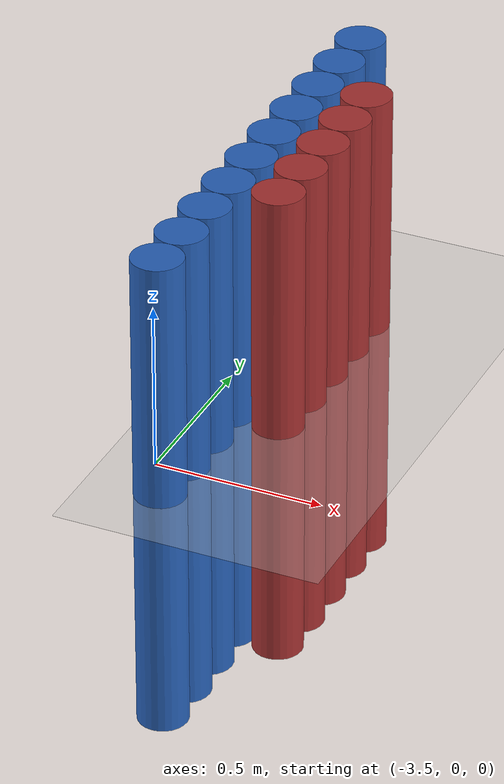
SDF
<sdf version="1.6">
 <world name="default">
  <model name="ground_plane">
   <static>1</static>
   <link name="link">
    <collision name="collision">
     <geometry><plane><normal>0 0 1</normal><size>100 100</size></plane></geometry>
     <surface><friction><ode><mu>100</mu><mu2>50</mu2></ode></friction></surface>
    </collision>
    <visual name="visual">
     <cast_shadows>0</cast_shadows>
     <geometry><plane><normal>0 0 1</normal><size>100 100</size></plane></geometry>
     <material>
      <script><uri>file://media/materials/scripts/gazebo.material</uri><name>Gazebo/Grey</name></script>
     </material>
    </visual>
   </link>
  </model>
  <model name="unit_cylinder_113">
   <static>1</static>
   <pose>-3.425000 -0.125000 0.000000 0.000000 0.000000 0.000000</pose>
   <link name="link">
    <inertial>
     <mass>1</mass>
     <inertia><ixx>0.145833</ixx><ixy>0</ixy><ixz>0</ixz><iyy>0.145833</iyy><iyz>0</iyz><izz>0.125</izz></inertia>
    </inertial>
    <collision name="collision">
     <geometry><cylinder><radius>0.075000</radius><length>1.5</length></cylinder></geometry>
    </collision>
    <visual name="visual">
     <geometry><cylinder><radius>0.075000</radius><length>1.5</length></cylinder></geometry>
     <material>
      <ambient>0.152000 0.379000 0.720000 1</ambient>
      <diffuse>0.152000 0.379000 0.720000 1</diffuse>
     </material>
     <material>
      <script><name>Gazebo/Grey</name><uri>file://media/materials/scripts/gazebo.material</uri></script>
     </material>
    </visual>
   </link>
  </model>
  <model name="unit_cylinder_115">
   <static>1</static>
   <pose>-3.425000 0.025000 0.000000 0.000000 0.000000 0.000000</pose>
   <link name="link">
    <inertial>
     <mass>1</mass>
     <inertia><ixx>0.145833</ixx><ixy>0</ixy><ixz>0</ixz><iyy>0.145833</iyy><iyz>0</iyz><izz>0.125</izz></inertia>
    </inertial>
    <collision name="collision">
     <geometry><cylinder><radius>0.075000</radius><length>1.5</length></cylinder></geometry>
    </collision>
    <visual name="visual">
     <geometry><cylinder><radius>0.075000</radius><length>1.5</length></cylinder></geometry>
     <material>
      <ambient>0.152000 0.379000 0.720000 1</ambient>
      <diffuse>0.152000 0.379000 0.720000 1</diffuse>
     </material>
     <material>
      <script><name>Gazebo/Grey</name><uri>file://media/materials/scripts/gazebo.material</uri></script>
     </material>
    </visual>
   </link>
  </model>
  <model name="unit_cylinder_117">
   <static>1</static>
   <pose>-3.425000 0.175000 0.000000 0.000000 0.000000 0.000000</pose>
   <link name="link">
    <inertial>
     <mass>1</mass>
     <inertia><ixx>0.145833</ixx><ixy>0</ixy><ixz>0</ixz><iyy>0.145833</iyy><iyz>0</iyz><izz>0.125</izz></inertia>
    </inertial>
    <collision name="collision">
     <geometry><cylinder><radius>0.075000</radius><length>1.5</length></cylinder></geometry>
    </collision>
    <visual name="visual">
     <geometry><cylinder><radius>0.075000</radius><length>1.5</length></cylinder></geometry>
     <material>
      <ambient>0.152000 0.379000 0.720000 1</ambient>
      <diffuse>0.152000 0.379000 0.720000 1</diffuse>
     </material>
     <material>
      <script><name>Gazebo/Grey</name><uri>file://media/materials/scripts/gazebo.material</uri></script>
     </material>
    </visual>
   </link>
  </model>
  <model name="unit_cylinder_119">
   <static>1</static>
   <pose>-3.425000 0.325000 0.000000 0.000000 0.000000 0.000000</pose>
   <link name="link">
    <inertial>
     <mass>1</mass>
     <inertia><ixx>0.145833</ixx><ixy>0</ixy><ixz>0</ixz><iyy>0.145833</iyy><iyz>0</iyz><izz>0.125</izz></inertia>
    </inertial>
    <collision name="collision">
     <geometry><cylinder><radius>0.075000</radius><length>1.5</length></cylinder></geometry>
    </collision>
    <visual name="visual">
     <geometry><cylinder><radius>0.075000</radius><length>1.5</length></cylinder></geometry>
     <material>
      <ambient>0.152000 0.379000 0.720000 1</ambient>
      <diffuse>0.152000 0.379000 0.720000 1</diffuse>
     </material>
     <material>
      <script><name>Gazebo/Grey</name><uri>file://media/materials/scripts/gazebo.material</uri></script>
     </material>
    </visual>
   </link>
  </model>
  <model name="unit_cylinder_121">
   <static>1</static>
   <pose>-3.425000 0.475000 0.000000 0.000000 0.000000 0.000000</pose>
   <link name="link">
    <inertial>
     <mass>1</mass>
     <inertia><ixx>0.145833</ixx><ixy>0</ixy><ixz>0</ixz><iyy>0.145833</iyy><iyz>0</iyz><izz>0.125</izz></inertia>
    </inertial>
    <collision name="collision">
     <geometry><cylinder><radius>0.075000</radius><length>1.5</length></cylinder></geometry>
    </collision>
    <visual name="visual">
     <geometry><cylinder><radius>0.075000</radius><length>1.5</length></cylinder></geometry>
     <material>
      <ambient>0.152000 0.379000 0.720000 1</ambient>
      <diffuse>0.152000 0.379000 0.720000 1</diffuse>
     </material>
     <material>
      <script><name>Gazebo/Grey</name><uri>file://media/materials/scripts/gazebo.material</uri></script>
     </material>
    </visual>
   </link>
  </model>
  <model name="unit_cylinder_123">
   <static>1</static>
   <pose>-3.425000 0.625000 0.000000 0.000000 0.000000 0.000000</pose>
   <link name="link">
    <inertial>
     <mass>1</mass>
     <inertia><ixx>0.145833</ixx><ixy>0</ixy><ixz>0</ixz><iyy>0.145833</iyy><iyz>0</iyz><izz>0.125</izz></inertia>
    </inertial>
    <collision name="collision">
     <geometry><cylinder><radius>0.075000</radius><length>1.5</length></cylinder></geometry>
    </collision>
    <visual name="visual">
     <geometry><cylinder><radius>0.075000</radius><length>1.5</length></cylinder></geometry>
     <material>
      <ambient>0.152000 0.379000 0.720000 1</ambient>
      <diffuse>0.152000 0.379000 0.720000 1</diffuse>
     </material>
     <material>
      <script><name>Gazebo/Grey</name><uri>file://media/materials/scripts/gazebo.material</uri></script>
     </material>
    </visual>
   </link>
  </model>
  <model name="unit_cylinder_125">
   <static>1</static>
   <pose>-3.425000 0.775000 0.000000 0.000000 0.000000 0.000000</pose>
   <link name="link">
    <inertial>
     <mass>1</mass>
     <inertia><ixx>0.145833</ixx><ixy>0</ixy><ixz>0</ixz><iyy>0.145833</iyy><iyz>0</iyz><izz>0.125</izz></inertia>
    </inertial>
    <collision name="collision">
     <geometry><cylinder><radius>0.075000</radius><length>1.5</length></cylinder></geometry>
    </collision>
    <visual name="visual">
     <geometry><cylinder><radius>0.075000</radius><length>1.5</length></cylinder></geometry>
     <material>
      <ambient>0.152000 0.379000 0.720000 1</ambient>
      <diffuse>0.152000 0.379000 0.720000 1</diffuse>
     </material>
     <material>
      <script><name>Gazebo/Grey</name><uri>file://media/materials/scripts/gazebo.material</uri></script>
     </material>
    </visual>
   </link>
  </model>
  <model name="unit_cylinder_127">
   <static>1</static>
   <pose>-3.425000 0.925000 0.000000 0.000000 0.000000 0.000000</pose>
   <link name="link">
    <inertial>
     <mass>1</mass>
     <inertia><ixx>0.145833</ixx><ixy>0</ixy><ixz>0</ixz><iyy>0.145833</iyy><iyz>0</iyz><izz>0.125</izz></inertia>
    </inertial>
    <collision name="collision">
     <geometry><cylinder><radius>0.075000</radius><length>1.5</length></cylinder></geometry>
    </collision>
    <visual name="visual">
     <geometry><cylinder><radius>0.075000</radius><length>1.5</length></cylinder></geometry>
     <material>
      <ambient>0.152000 0.379000 0.720000 1</ambient>
      <diffuse>0.152000 0.379000 0.720000 1</diffuse>
     </material>
     <material>
      <script><name>Gazebo/Grey</name><uri>file://media/materials/scripts/gazebo.material</uri></script>
     </material>
    </visual>
   </link>
  </model>
  <model name="unit_cylinder_129">
   <static>1</static>
   <pose>-3.425000 1.075000 0.000000 0.000000 0.000000 0.000000</pose>
   <link name="link">
    <inertial>
     <mass>1</mass>
     <inertia><ixx>0.145833</ixx><ixy>0</ixy><ixz>0</ixz><iyy>0.145833</iyy><iyz>0</iyz><izz>0.125</izz></inertia>
    </inertial>
    <collision name="collision">
     <geometry><cylinder><radius>0.075000</radius><length>1.5</length></cylinder></geometry>
    </collision>
    <visual name="visual">
     <geometry><cylinder><radius>0.075000</radius><length>1.5</length></cylinder></geometry>
     <material>
      <ambient>0.152000 0.379000 0.720000 1</ambient>
      <diffuse>0.152000 0.379000 0.720000 1</diffuse>
     </material>
     <material>
      <script><name>Gazebo/Grey</name><uri>file://media/materials/scripts/gazebo.material</uri></script>
     </material>
    </visual>
   </link>
  </model>
  <model name="unit_cylinder_131">
   <static>1</static>
   <pose>-3.425000 1.225000 0.000000 0.000000 0.000000 0.000000</pose>
   <link name="link">
    <inertial>
     <mass>1</mass>
     <inertia><ixx>0.145833</ixx><ixy>0</ixy><ixz>0</ixz><iyy>0.145833</iyy><iyz>0</iyz><izz>0.125</izz></inertia>
    </inertial>
    <collision name="collision">
     <geometry><cylinder><radius>0.075000</radius><length>1.5</length></cylinder></geometry>
    </collision>
    <visual name="visual">
     <geometry><cylinder><radius>0.075000</radius><length>1.5</length></cylinder></geometry>
     <material>
      <ambient>0.152000 0.379000 0.720000 1</ambient>
      <diffuse>0.152000 0.379000 0.720000 1</diffuse>
     </material>
     <material>
      <script><name>Gazebo/Grey</name><uri>file://media/materials/scripts/gazebo.material</uri></script>
     </material>
    </visual>
   </link>
  </model>
  <model name="unit_cylinder_220">
   <static>1</static>
   <pose>-3.425000 -0.125000 0.000000 0.000000 0.000000 0.000000</pose>
   <link name="link">
    <inertial>
     <mass>1</mass>
     <inertia><ixx>0.145833</ixx><ixy>0</ixy><ixz>0</ixz><iyy>0.145833</iyy><iyz>0</iyz><izz>0.125</izz></inertia>
    </inertial>
    <collision name="collision">
     <geometry><cylinder><radius>0.075000</radius><length>1.5</length></cylinder></geometry>
    </collision>
    <visual name="visual">
     <geometry><cylinder><radius>0.075000</radius><length>1.5</length></cylinder></geometry>
     <material>
      <ambient>0.152000 0.379000 0.720000 1</ambient>
      <diffuse>0.152000 0.379000 0.720000 1</diffuse>
     </material>
     <material>
      <script><name>Gazebo/Grey</name><uri>file://media/materials/scripts/gazebo.material</uri></script>
     </material>
    </visual>
   </link>
  </model>
  <model name="unit_cylinder_221">
   <static>1</static>
   <pose>-3.425000 0.025000 0.000000 0.000000 0.000000 0.000000</pose>
   <link name="link">
    <inertial>
     <mass>1</mass>
     <inertia><ixx>0.145833</ixx><ixy>0</ixy><ixz>0</ixz><iyy>0.145833</iyy><iyz>0</iyz><izz>0.125</izz></inertia>
    </inertial>
    <collision name="collision">
     <geometry><cylinder><radius>0.075000</radius><length>1.5</length></cylinder></geometry>
    </collision>
    <visual name="visual">
     <geometry><cylinder><radius>0.075000</radius><length>1.5</length></cylinder></geometry>
     <material>
      <ambient>0.152000 0.379000 0.720000 1</ambient>
      <diffuse>0.152000 0.379000 0.720000 1</diffuse>
     </material>
     <material>
      <script><name>Gazebo/Grey</name><uri>file://media/materials/scripts/gazebo.material</uri></script>
     </material>
    </visual>
   </link>
  </model>
  <model name="unit_cylinder_222">
   <static>1</static>
   <pose>-3.425000 0.175000 0.000000 0.000000 0.000000 0.000000</pose>
   <link name="link">
    <inertial>
     <mass>1</mass>
     <inertia><ixx>0.145833</ixx><ixy>0</ixy><ixz>0</ixz><iyy>0.145833</iyy><iyz>0</iyz><izz>0.125</izz></inertia>
    </inertial>
    <collision name="collision">
     <geometry><cylinder><radius>0.075000</radius><length>1.5</length></cylinder></geometry>
    </collision>
    <visual name="visual">
     <geometry><cylinder><radius>0.075000</radius><length>1.5</length></cylinder></geometry>
     <material>
      <ambient>0.152000 0.379000 0.720000 1</ambient>
      <diffuse>0.152000 0.379000 0.720000 1</diffuse>
     </material>
     <material>
      <script><name>Gazebo/Grey</name><uri>file://media/materials/scripts/gazebo.material</uri></script>
     </material>
    </visual>
   </link>
  </model>
  <model name="unit_cylinder_223">
   <static>1</static>
   <pose>-3.425000 0.325000 0.000000 0.000000 0.000000 0.000000</pose>
   <link name="link">
    <inertial>
     <mass>1</mass>
     <inertia><ixx>0.145833</ixx><ixy>0</ixy><ixz>0</ixz><iyy>0.145833</iyy><iyz>0</iyz><izz>0.125</izz></inertia>
    </inertial>
    <collision name="collision">
     <geometry><cylinder><radius>0.075000</radius><length>1.5</length></cylinder></geometry>
    </collision>
    <visual name="visual">
     <geometry><cylinder><radius>0.075000</radius><length>1.5</length></cylinder></geometry>
     <material>
      <ambient>0.152000 0.379000 0.720000 1</ambient>
      <diffuse>0.152000 0.379000 0.720000 1</diffuse>
     </material>
     <material>
      <script><name>Gazebo/Grey</name><uri>file://media/materials/scripts/gazebo.material</uri></script>
     </material>
    </visual>
   </link>
  </model>
  <model name="unit_cylinder_224">
   <static>1</static>
   <pose>-3.425000 0.475000 0.000000 0.000000 0.000000 0.000000</pose>
   <link name="link">
    <inertial>
     <mass>1</mass>
     <inertia><ixx>0.145833</ixx><ixy>0</ixy><ixz>0</ixz><iyy>0.145833</iyy><iyz>0</iyz><izz>0.125</izz></inertia>
    </inertial>
    <collision name="collision">
     <geometry><cylinder><radius>0.075000</radius><length>1.5</length></cylinder></geometry>
    </collision>
    <visual name="visual">
     <geometry><cylinder><radius>0.075000</radius><length>1.5</length></cylinder></geometry>
     <material>
      <ambient>0.152000 0.379000 0.720000 1</ambient>
      <diffuse>0.152000 0.379000 0.720000 1</diffuse>
     </material>
     <material>
      <script><name>Gazebo/Grey</name><uri>file://media/materials/scripts/gazebo.material</uri></script>
     </material>
    </visual>
   </link>
  </model>
  <model name="unit_cylinder_225">
   <static>1</static>
   <pose>-3.425000 0.625000 0.000000 0.000000 0.000000 0.000000</pose>
   <link name="link">
    <inertial>
     <mass>1</mass>
     <inertia><ixx>0.145833</ixx><ixy>0</ixy><ixz>0</ixz><iyy>0.145833</iyy><iyz>0</iyz><izz>0.125</izz></inertia>
    </inertial>
    <collision name="collision">
     <geometry><cylinder><radius>0.075000</radius><length>1.5</length></cylinder></geometry>
    </collision>
    <visual name="visual">
     <geometry><cylinder><radius>0.075000</radius><length>1.5</length></cylinder></geometry>
     <material>
      <ambient>0.152000 0.379000 0.720000 1</ambient>
      <diffuse>0.152000 0.379000 0.720000 1</diffuse>
     </material>
     <material>
      <script><name>Gazebo/Grey</name><uri>file://media/materials/scripts/gazebo.material</uri></script>
     </material>
    </visual>
   </link>
  </model>
  <model name="unit_cylinder_226">
   <static>1</static>
   <pose>-3.425000 0.775000 0.000000 0.000000 0.000000 0.000000</pose>
   <link name="link">
    <inertial>
     <mass>1</mass>
     <inertia><ixx>0.145833</ixx><ixy>0</ixy><ixz>0</ixz><iyy>0.145833</iyy><iyz>0</iyz><izz>0.125</izz></inertia>
    </inertial>
    <collision name="collision">
     <geometry><cylinder><radius>0.075000</radius><length>1.5</length></cylinder></geometry>
    </collision>
    <visual name="visual">
     <geometry><cylinder><radius>0.075000</radius><length>1.5</length></cylinder></geometry>
     <material>
      <ambient>0.152000 0.379000 0.720000 1</ambient>
      <diffuse>0.152000 0.379000 0.720000 1</diffuse>
     </material>
     <material>
      <script><name>Gazebo/Grey</name><uri>file://media/materials/scripts/gazebo.material</uri></script>
     </material>
    </visual>
   </link>
  </model>
  <model name="unit_cylinder_227">
   <static>1</static>
   <pose>-3.425000 0.925000 0.000000 0.000000 0.000000 0.000000</pose>
   <link name="link">
    <inertial>
     <mass>1</mass>
     <inertia><ixx>0.145833</ixx><ixy>0</ixy><ixz>0</ixz><iyy>0.145833</iyy><iyz>0</iyz><izz>0.125</izz></inertia>
    </inertial>
    <collision name="collision">
     <geometry><cylinder><radius>0.075000</radius><length>1.5</length></cylinder></geometry>
    </collision>
    <visual name="visual">
     <geometry><cylinder><radius>0.075000</radius><length>1.5</length></cylinder></geometry>
     <material>
      <ambient>0.152000 0.379000 0.720000 1</ambient>
      <diffuse>0.152000 0.379000 0.720000 1</diffuse>
     </material>
     <material>
      <script><name>Gazebo/Grey</name><uri>file://media/materials/scripts/gazebo.material</uri></script>
     </material>
    </visual>
   </link>
  </model>
  <model name="unit_cylinder_228">
   <static>1</static>
   <pose>-3.425000 1.075000 0.000000 0.000000 0.000000 0.000000</pose>
   <link name="link">
    <inertial>
     <mass>1</mass>
     <inertia><ixx>0.145833</ixx><ixy>0</ixy><ixz>0</ixz><iyy>0.145833</iyy><iyz>0</iyz><izz>0.125</izz></inertia>
    </inertial>
    <collision name="collision">
     <geometry><cylinder><radius>0.075000</radius><length>1.5</length></cylinder></geometry>
    </collision>
    <visual name="visual">
     <geometry><cylinder><radius>0.075000</radius><length>1.5</length></cylinder></geometry>
     <material>
      <ambient>0.152000 0.379000 0.720000 1</ambient>
      <diffuse>0.152000 0.379000 0.720000 1</diffuse>
     </material>
     <material>
      <script><name>Gazebo/Grey</name><uri>file://media/materials/scripts/gazebo.material</uri></script>
     </material>
    </visual>
   </link>
  </model>
  <model name="unit_cylinder_229">
   <static>1</static>
   <pose>-3.425000 1.225000 0.000000 0.000000 0.000000 0.000000</pose>
   <link name="link">
    <inertial>
     <mass>1</mass>
     <inertia><ixx>0.145833</ixx><ixy>0</ixy><ixz>0</ixz><iyy>0.145833</iyy><iyz>0</iyz><izz>0.125</izz></inertia>
    </inertial>
    <collision name="collision">
     <geometry><cylinder><radius>0.075000</radius><length>1.5</length></cylinder></geometry>
    </collision>
    <visual name="visual">
     <geometry><cylinder><radius>0.075000</radius><length>1.5</length></cylinder></geometry>
     <material>
      <ambient>0.152000 0.379000 0.720000 1</ambient>
      <diffuse>0.152000 0.379000 0.720000 1</diffuse>
     </material>
     <material>
      <script><name>Gazebo/Grey</name><uri>file://media/materials/scripts/gazebo.material</uri></script>
     </material>
    </visual>
   </link>
  </model>
  <model name="unit_cylinder_262">
   <static>1</static>
   <pose>-3.275000 0.325000 0.000000 0.000000 0.000000 0.000000</pose>
   <link name="link">
    <inertial>
     <mass>1</mass>
     <inertia><ixx>0.145833</ixx><ixy>0</ixy><ixz>0</ixz><iyy>0.145833</iyy><iyz>0</iyz><izz>0.125</izz></inertia>
    </inertial>
    <collision name="collision">
     <geometry><cylinder><radius>0.075000</radius><length>1.5</length></cylinder></geometry>
    </collision>
    <visual name="visual">
     <geometry><cylinder><radius>0.075000</radius><length>1.5</length></cylinder></geometry>
     <material>
      <ambient>0.648000 0.192000 0.192000 1</ambient>
      <diffuse>0.648000 0.192000 0.192000 1</diffuse>
     </material>
     <material>
      <script><name>Gazebo/Grey</name><uri>file://media/materials/scripts/gazebo.material</uri></script>
     </material>
    </visual>
   </link>
  </model>
  <model name="unit_cylinder_263">
   <static>1</static>
   <pose>-3.275000 0.475000 0.000000 0.000000 0.000000 0.000000</pose>
   <link name="link">
    <inertial>
     <mass>1</mass>
     <inertia><ixx>0.145833</ixx><ixy>0</ixy><ixz>0</ixz><iyy>0.145833</iyy><iyz>0</iyz><izz>0.125</izz></inertia>
    </inertial>
    <collision name="collision">
     <geometry><cylinder><radius>0.075000</radius><length>1.5</length></cylinder></geometry>
    </collision>
    <visual name="visual">
     <geometry><cylinder><radius>0.075000</radius><length>1.5</length></cylinder></geometry>
     <material>
      <ambient>0.648000 0.192000 0.192000 1</ambient>
      <diffuse>0.648000 0.192000 0.192000 1</diffuse>
     </material>
     <material>
      <script><name>Gazebo/Grey</name><uri>file://media/materials/scripts/gazebo.material</uri></script>
     </material>
    </visual>
   </link>
  </model>
  <model name="unit_cylinder_264">
   <static>1</static>
   <pose>-3.275000 0.625000 0.000000 0.000000 0.000000 0.000000</pose>
   <link name="link">
    <inertial>
     <mass>1</mass>
     <inertia><ixx>0.145833</ixx><ixy>0</ixy><ixz>0</ixz><iyy>0.145833</iyy><iyz>0</iyz><izz>0.125</izz></inertia>
    </inertial>
    <collision name="collision">
     <geometry><cylinder><radius>0.075000</radius><length>1.5</length></cylinder></geometry>
    </collision>
    <visual name="visual">
     <geometry><cylinder><radius>0.075000</radius><length>1.5</length></cylinder></geometry>
     <material>
      <ambient>0.648000 0.192000 0.192000 1</ambient>
      <diffuse>0.648000 0.192000 0.192000 1</diffuse>
     </material>
     <material>
      <script><name>Gazebo/Grey</name><uri>file://media/materials/scripts/gazebo.material</uri></script>
     </material>
    </visual>
   </link>
  </model>
  <model name="unit_cylinder_265">
   <static>1</static>
   <pose>-3.275000 0.775000 0.000000 0.000000 0.000000 0.000000</pose>
   <link name="link">
    <inertial>
     <mass>1</mass>
     <inertia><ixx>0.145833</ixx><ixy>0</ixy><ixz>0</ixz><iyy>0.145833</iyy><iyz>0</iyz><izz>0.125</izz></inertia>
    </inertial>
    <collision name="collision">
     <geometry><cylinder><radius>0.075000</radius><length>1.5</length></cylinder></geometry>
    </collision>
    <visual name="visual">
     <geometry><cylinder><radius>0.075000</radius><length>1.5</length></cylinder></geometry>
     <material>
      <ambient>0.648000 0.192000 0.192000 1</ambient>
      <diffuse>0.648000 0.192000 0.192000 1</diffuse>
     </material>
     <material>
      <script><name>Gazebo/Grey</name><uri>file://media/materials/scripts/gazebo.material</uri></script>
     </material>
    </visual>
   </link>
  </model>
  <model name="unit_cylinder_266">
   <static>1</static>
   <pose>-3.275000 0.925000 0.000000 0.000000 0.000000 0.000000</pose>
   <link name="link">
    <inertial>
     <mass>1</mass>
     <inertia><ixx>0.145833</ixx><ixy>0</ixy><ixz>0</ixz><iyy>0.145833</iyy><iyz>0</iyz><izz>0.125</izz></inertia>
    </inertial>
    <collision name="collision">
     <geometry><cylinder><radius>0.075000</radius><length>1.5</length></cylinder></geometry>
    </collision>
    <visual name="visual">
     <geometry><cylinder><radius>0.075000</radius><length>1.5</length></cylinder></geometry>
     <material>
      <ambient>0.648000 0.192000 0.192000 1</ambient>
      <diffuse>0.648000 0.192000 0.192000 1</diffuse>
     </material>
     <material>
      <script><name>Gazebo/Grey</name><uri>file://media/materials/scripts/gazebo.material</uri></script>
     </material>
    </visual>
   </link>
  </model>
 </world>
</sdf>
